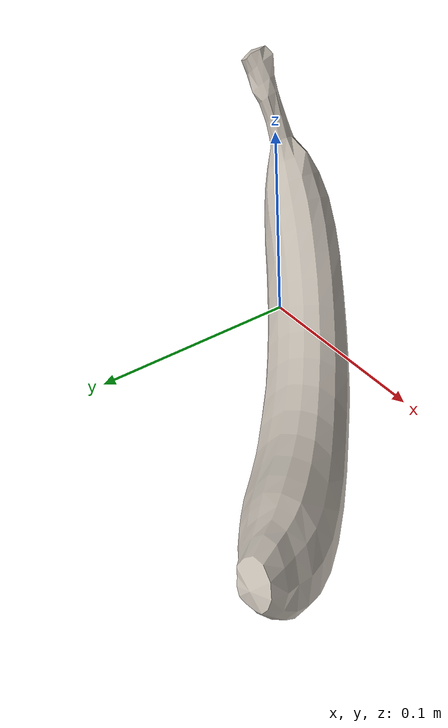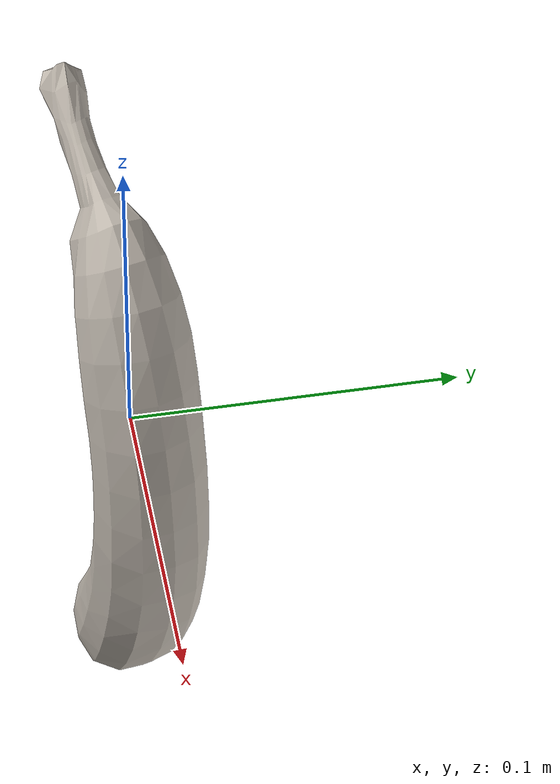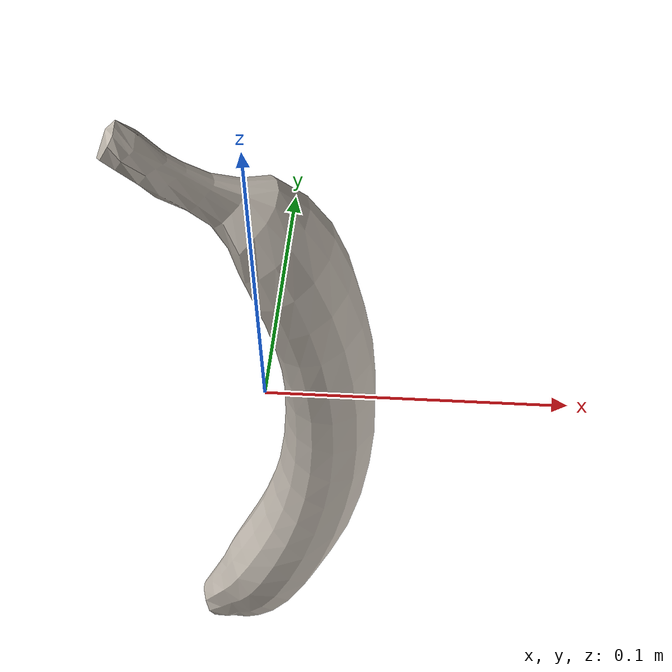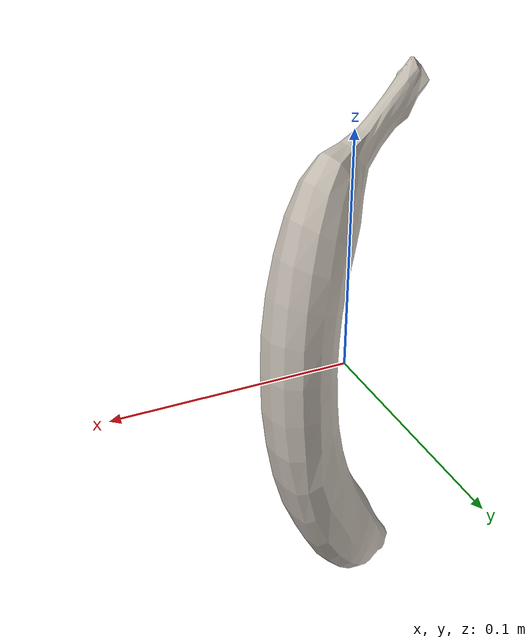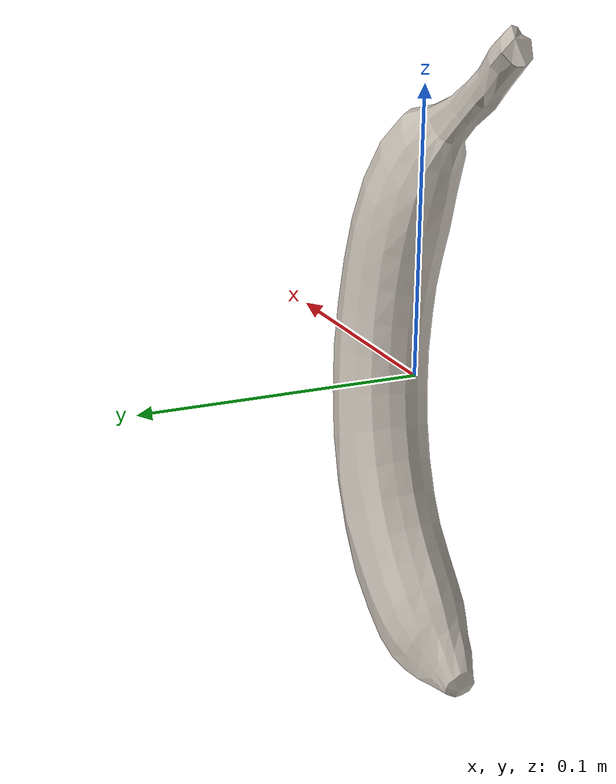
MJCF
<mujoco model="banana_be9888a7">
  <compiler angle="radian"/>
  <asset>
    <texture type="2d" name="banana_be9888a7_tex" file="banana_be9888a7_visual_0.png"/>
    <material name="banana_be9888a7_mat" texture="banana_be9888a7_tex"/>
    <mesh name="banana_be9888a7_visual" content_type="model/obj" file="banana_be9888a7_visual.obj" scale="-1 1.33165 1.78264"/>
    <mesh name="banana_be9888a7_c0" content_type="model/obj" file="banana_be9888a7_c0.obj" scale="-1 1.33165 1.78264"/>
    <mesh name="banana_be9888a7_c1" content_type="model/obj" file="banana_be9888a7_c1.obj" scale="-1 1.33165 1.78264"/>
    <mesh name="banana_be9888a7_c2" content_type="model/obj" file="banana_be9888a7_c2.obj" scale="-1 1.33165 1.78264"/>
    <mesh name="banana_be9888a7_c3" content_type="model/obj" file="banana_be9888a7_c3.obj" scale="-1 1.33165 1.78264"/>
  </asset>
  <worldbody>
    <body name="banana_be9888a7">
      <freejoint/>
      <geom name="banana_be9888a7_visual" type="mesh" mesh="banana_be9888a7_visual" mass="1e-8" contype="0" conaffinity="0" group="2" material="banana_be9888a7_mat"/>
      <geom name="banana_be9888a7_c0" type="mesh" mesh="banana_be9888a7_c0" group="3" density="770.92" friction="0.9 0.05 0.005" condim="4" rgba="0.4 0.5 0.9 0.35"/>
      <geom name="banana_be9888a7_c1" type="mesh" mesh="banana_be9888a7_c1" group="3" density="770.92" friction="0.9 0.05 0.005" condim="4" rgba="0.4 0.5 0.9 0.35"/>
      <geom name="banana_be9888a7_c2" type="mesh" mesh="banana_be9888a7_c2" group="3" density="770.92" friction="0.9 0.05 0.005" condim="4" rgba="0.4 0.5 0.9 0.35"/>
      <geom name="banana_be9888a7_c3" type="mesh" mesh="banana_be9888a7_c3" group="3" density="770.92" friction="0.9 0.05 0.005" condim="4" rgba="0.4 0.5 0.9 0.35"/>
    </body>
  </worldbody>
</mujoco>
